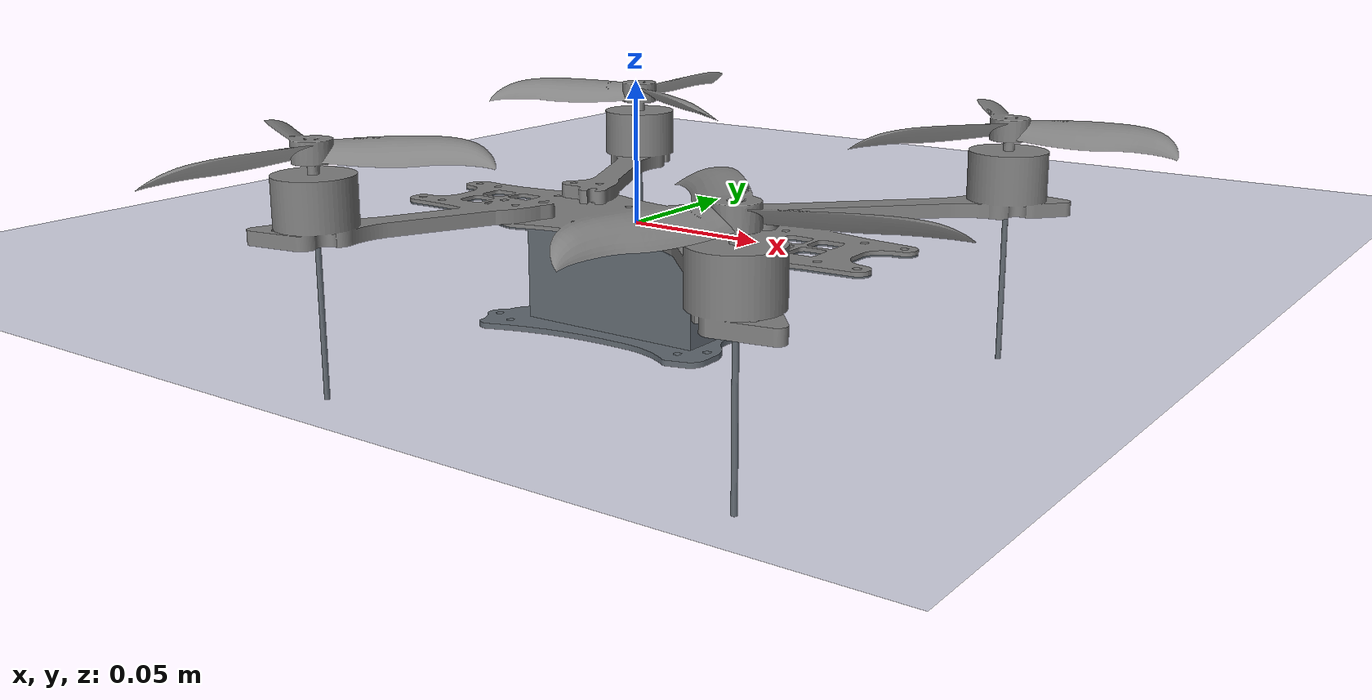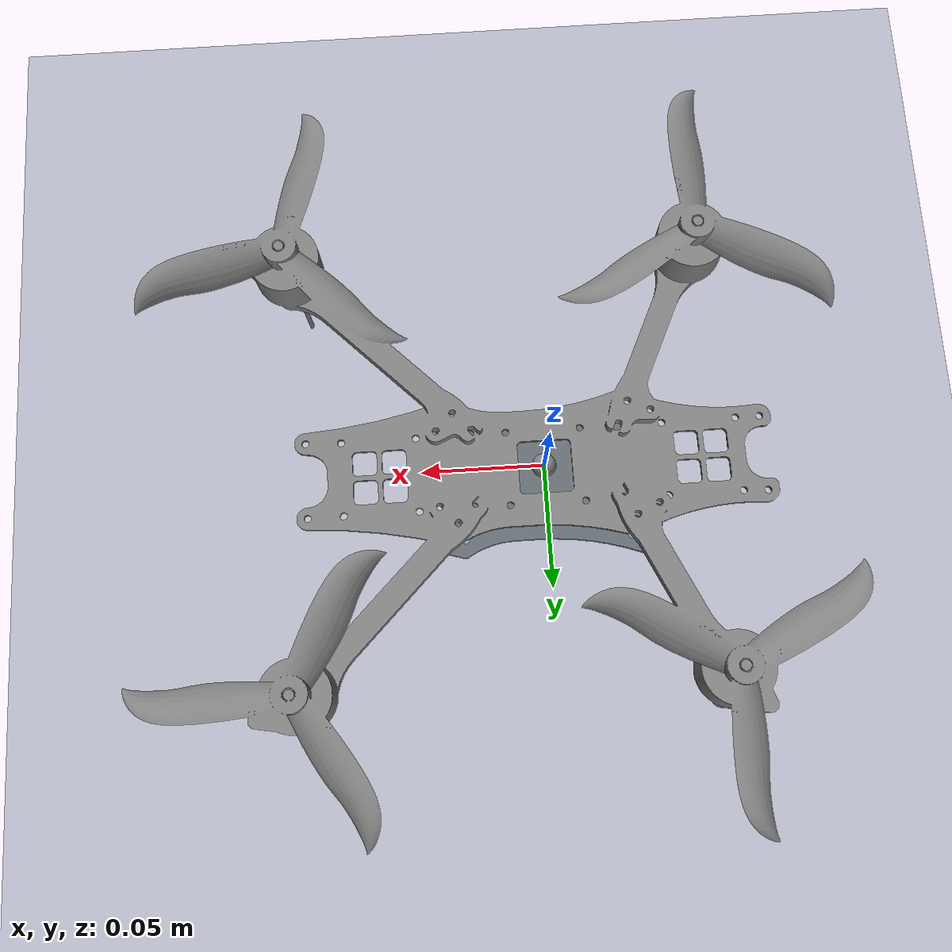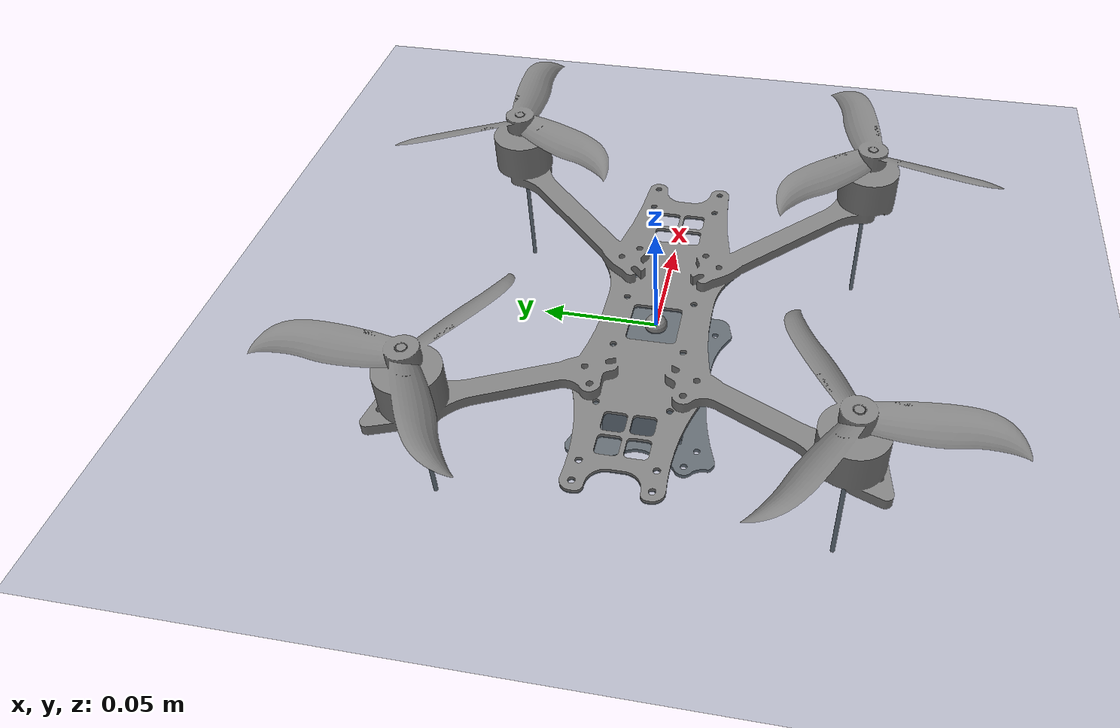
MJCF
<mujoco model="Drone">
  <compiler angle="radian" meshdir=""/>
  <option timestep="0.005"/>
  <visual>
    <quality shadowsize="4096"/>
  </visual>

  <asset>
    <mesh file="quad_model.stl" name="drone" smoothnormal="true" scale=".01 .01 .01"/>
    <texture type="skybox" builtin="gradient" rgb1=".3 .5 .7" rgb2="0 0 0" width="512" height="512"/>
    <texture name="grid" type="2d" builtin="checker" width="512" height="512" rgb1=".1 .2 .3" rgb2=".2 .3 .4"/>
    <material name="grid" texture="grid" texrepeat="1 1" texuniform="true" reflectance=".2"/>
  </asset>

  <worldbody>
    <camera pos="2.867 -5.173 1.776" xyaxes="0.875 0.485 0.000 -0.139 0.252 0.958"/>
    <geom size="20 20 .05" type="plane" material="grid" condim="3"/>
    <light dir=".2 1 -.4" diffuse=".9 .9 .9" specular="0.6 0.9 0.6" pos="-2 -10 6" cutoff="70"/>
    <light dir="-.2 1 -.4" diffuse=".9 .9 .9" specular="0.6 0.9 0.6" pos="2 -10 6" cutoff="70"/>

    <body name="drone" pos="0 0 0">
        <inertial pos="0 0 0" diaginertia="1.5e-3 1.45e-3 2.66e-3" mass="0.605"/>
        <joint type="free"/>
        <geom name="drone" type="mesh" pos="0 0 0" euler="0 0 1.57" mesh="drone"/>
        <site name="COG" pos="0 0 0"/>
    </body>

  </worldbody>

  <actuator>
      <general site="COG" gear=" 0 0 1 0 0 0" ctrllimited="true" ctrlrange="0 20"/>
      <general site="COG" gear=" 0 0 0 1 0 0" ctrllimited="true" ctrlrange="-1 1"/>
      <general site="COG" gear=" 0 0 0 0 1 0" ctrllimited="true" ctrlrange="-1 1"/>
      <general site="COG" gear=" 0 0 0 0 0 1" ctrllimited="true" ctrlrange="-1 1"/>
  </actuator>

  <sensor>
      <gyro site="COG"/>
  </sensor>
</mujoco>
